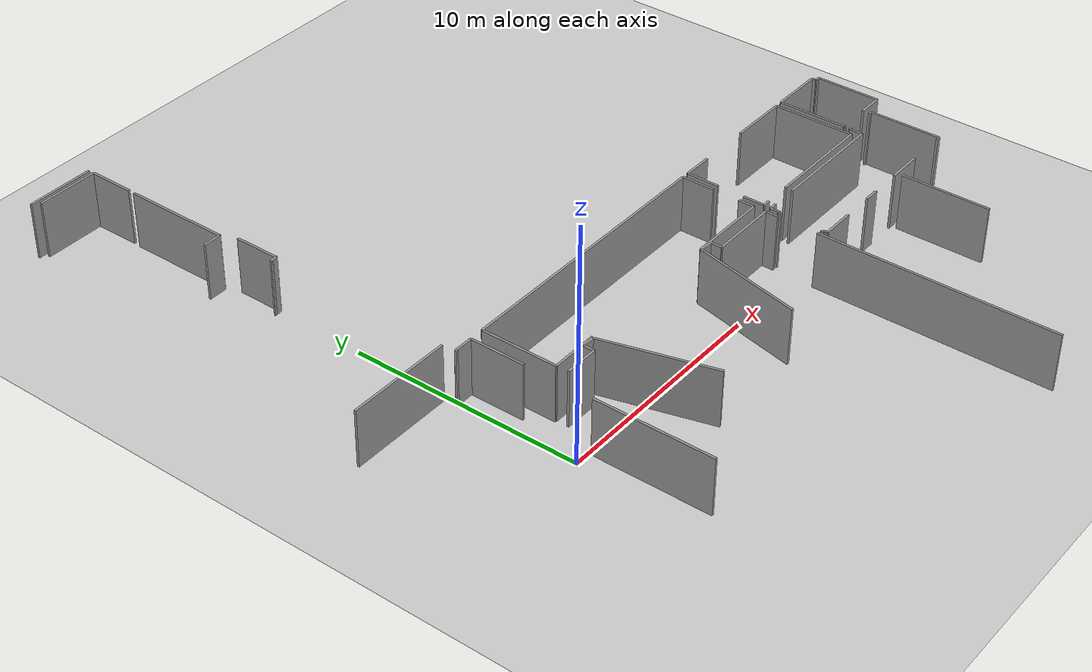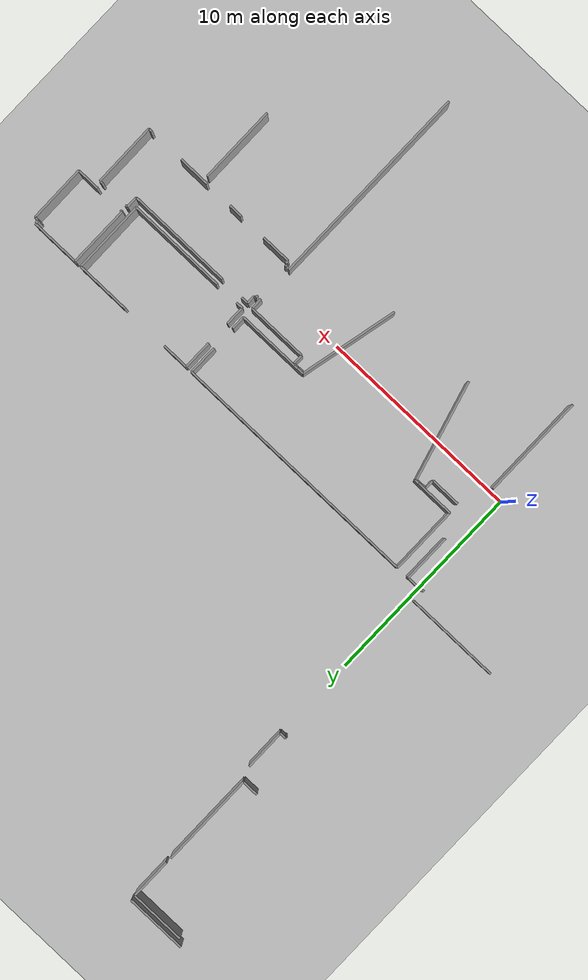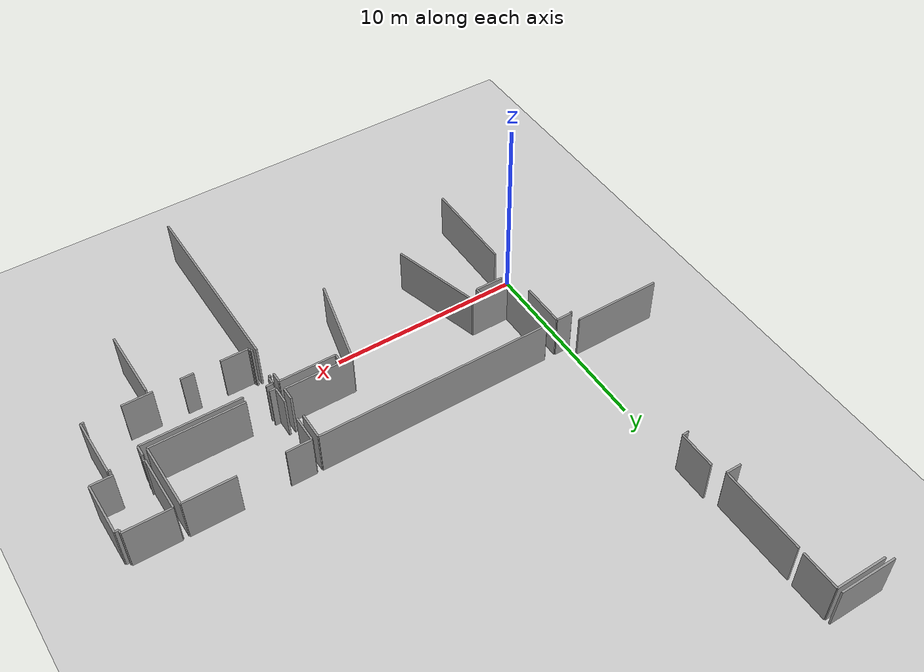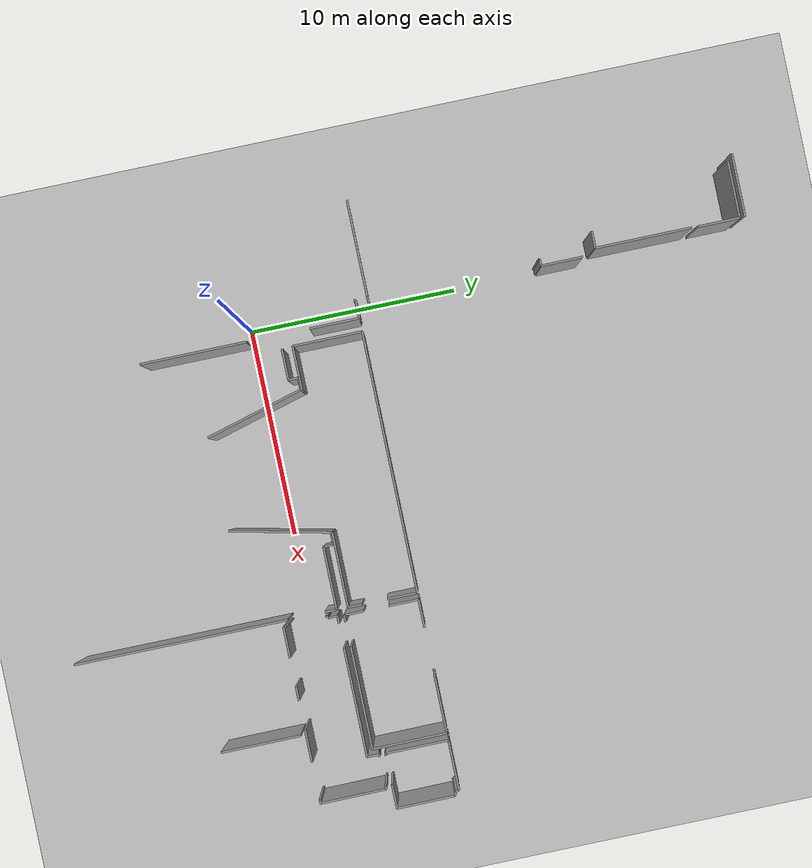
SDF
<sdf version="1.6">
 <world name="default">
  <model name="ground_plane">
   <static>1</static>
   <link name="link">
    <collision name="collision">
     <geometry><plane><normal>0 0 1</normal><size>100 100</size></plane></geometry>
     <surface><friction><ode><mu>100</mu><mu2>50</mu2></ode></friction></surface>
    </collision>
    <visual name="visual">
     <cast_shadows>0</cast_shadows>
     <geometry><plane><normal>0 0 1</normal><size>100 100</size></plane></geometry>
     <material>
      <script><uri>file://media/materials/scripts/gazebo.material</uri><name>Gazebo/Grey</name></script>
     </material>
    </visual>
   </link>
  </model>
  <model name="0510032322">
   <static>1</static>
   <link name="Wall_65">
    <collision name="Wall_65_Collision">
     <geometry><box><size>2.98356847737 0.1 2.5</size></box></geometry>
     <pose>1.49178423869 0 1.25 0 0 0</pose>
    </collision>
    <visual name="Wall_65_Visual">
     <pose>1.49178423869 0 1.25 0 0 0</pose>
     <geometry><box><size>2.98356847737 0.1 2.5</size></box></geometry>
     <material>
      <script><uri>file://media/materials/scripts/gazebo.material</uri><name>Gazebo/Grey</name></script>
      <ambient>1 1 1 1</ambient>
     </material>
    </visual>
    <pose>22.3246574386 -3.62267791296 0 0 0 3.14159265359</pose>
   </link>
   <link name="Wall_75">
    <collision name="Wall_75_Collision">
     <geometry><box><size>1.98676085122 0.1 2.5</size></box></geometry>
     <pose>0.993380425608 0 1.25 0 0 0</pose>
    </collision>
    <visual name="Wall_75_Visual">
     <pose>0.993380425608 0 1.25 0 0 0</pose>
     <geometry><box><size>1.98676085122 0.1 2.5</size></box></geometry>
     <material>
      <script><uri>file://media/materials/scripts/gazebo.material</uri><name>Gazebo/Grey</name></script>
      <ambient>1 1 1 1</ambient>
     </material>
    </visual>
    <pose>22.3357006404 -5.85848200402 0 0 0 1.57079632679</pose>
   </link>
   <link name="Wall_76">
    <collision name="Wall_76_Collision">
     <geometry><box><size>2.70431509936 0.1 2.5</size></box></geometry>
     <pose>1.35215754968 0 1.25 0 0 0</pose>
    </collision>
    <visual name="Wall_76_Visual">
     <pose>1.35215754968 0 1.25 0 0 0</pose>
     <geometry><box><size>2.70431509936 0.1 2.5</size></box></geometry>
     <material>
      <script><uri>file://media/materials/scripts/gazebo.material</uri><name>Gazebo/Grey</name></script>
      <ambient>1 1 1 1</ambient>
     </material>
    </visual>
    <pose>22.3357006404 -3.87172115281 0 0 0 3.14159265359</pose>
   </link>
   <link name="Wall_80">
    <collision name="Wall_80_Collision">
     <geometry><box><size>0.801203328193 0.1 2.5</size></box></geometry>
     <pose>0.400601664096 0 1.25 0 0 0</pose>
    </collision>
    <visual name="Wall_80_Visual">
     <pose>0.400601664096 0 1.25 0 0 0</pose>
     <geometry><box><size>0.801203328193 0.1 2.5</size></box></geometry>
     <material>
      <script><uri>file://media/materials/scripts/gazebo.material</uri><name>Gazebo/Grey</name></script>
      <ambient>1 1 1 1</ambient>
     </material>
    </visual>
    <pose>22.3240227718 -10.7221873155 0 0 0 3.14159265359</pose>
   </link>
   <link name="Wall_85">
    <collision name="Wall_85_Collision">
     <geometry><box><size>4.58128051464 0.1 2.5</size></box></geometry>
     <pose>2.29064025732 0 1.25 0 0 0</pose>
    </collision>
    <visual name="Wall_85_Visual">
     <pose>2.29064025732 0 1.25 0 0 0</pose>
     <geometry><box><size>4.58128051464 0.1 2.5</size></box></geometry>
     <material>
      <script><uri>file://media/materials/scripts/gazebo.material</uri><name>Gazebo/Grey</name></script>
      <ambient>1 1 1 1</ambient>
     </material>
    </visual>
    <pose>22.3198339712 -6.14090871588 0 0 0 -1.569881997</pose>
   </link>
   <link name="Wall_86">
    <collision name="Wall_86_Collision">
     <geometry><box><size>0.302355248377 0.1 2.5</size></box></geometry>
     <pose>0.151177624188 0 1.25 0 0 0</pose>
    </collision>
    <visual name="Wall_86_Visual">
     <pose>0.151177624188 0 1.25 0 0 0</pose>
     <geometry><box><size>0.302355248377 0.1 2.5</size></box></geometry>
     <material>
      <script><uri>file://media/materials/scripts/gazebo.material</uri><name>Gazebo/Grey</name></script>
      <ambient>1 1 1 1</ambient>
     </material>
    </visual>
    <pose>22.6143193516 -13.3566890704 0 0 0 3.14159265359</pose>
   </link>
   <link name="Wall_87">
    <collision name="Wall_87_Collision">
     <geometry><box><size>0.0699402778571 0.1 2.5</size></box></geometry>
     <pose>0.0349701389286 0 1.25 0 0 0</pose>
    </collision>
    <visual name="Wall_87_Visual">
     <pose>0.0349701389286 0 1.25 0 0 0</pose>
     <geometry><box><size>0.0699402778571 0.1 2.5</size></box></geometry>
     <material>
      <script><uri>file://media/materials/scripts/gazebo.material</uri><name>Gazebo/Grey</name></script>
      <ambient>1 1 1 1</ambient>
     </material>
    </visual>
    <pose>22.3119641032 -13.3566890704 0 0 0 -1.57079632679</pose>
   </link>
   <link name="Wall_92">
    <collision name="Wall_92_Collision">
     <geometry><box><size>1.96519549995 0.1 2.5</size></box></geometry>
     <pose>0.982597749976 0 1.25 0 0 0</pose>
    </collision>
    <visual name="Wall_92_Visual">
     <pose>0.982597749976 0 1.25 0 0 0</pose>
     <geometry><box><size>1.96519549995 0.1 2.5</size></box></geometry>
     <material>
      <script><uri>file://media/materials/scripts/gazebo.material</uri><name>Gazebo/Grey</name></script>
      <ambient>1 1 1 1</ambient>
     </material>
    </visual>
    <pose>22.6070841505 -11.3915068893 0 0 0 -1.56711464856</pose>
   </link>
   <link name="Wall_97">
    <collision name="Wall_97_Collision">
     <geometry><box><size>0.0821258798068 0.1 2.5</size></box></geometry>
     <pose>0.0410629399034 0 1.25 0 0 0</pose>
    </collision>
    <visual name="Wall_97_Visual">
     <pose>0.0410629399034 0 1.25 0 0 0</pose>
     <geometry><box><size>0.0821258798068 0.1 2.5</size></box></geometry>
     <material>
      <script><uri>file://media/materials/scripts/gazebo.material</uri><name>Gazebo/Grey</name></script>
      <ambient>1 1 1 1</ambient>
     </material>
    </visual>
    <pose>22.3892665156 -22.1893464836 0 0 0 1.57079632679</pose>
   </link>
   <link name="Wall_98">
    <collision name="Wall_98_Collision">
     <geometry><box><size>0.856673203734 0.1 2.5</size></box></geometry>
     <pose>0.428336601867 0 1.25 0 0 0</pose>
    </collision>
    <visual name="Wall_98_Visual">
     <pose>0.428336601867 0 1.25 0 0 0</pose>
     <geometry><box><size>0.856673203734 0.1 2.5</size></box></geometry>
     <material>
      <script><uri>file://media/materials/scripts/gazebo.material</uri><name>Gazebo/Grey</name></script>
      <ambient>1 1 1 1</ambient>
     </material>
    </visual>
    <pose>22.3892665156 -22.1072206038 0 0 0 0.0</pose>
   </link>
   <link name="Wall_99">
    <collision name="Wall_99_Collision">
     <geometry><box><size>2.35321744318 0.1 2.5</size></box></geometry>
     <pose>1.17660872159 0 1.25 0 0 0</pose>
    </collision>
    <visual name="Wall_99_Visual">
     <pose>1.17660872159 0 1.25 0 0 0</pose>
     <geometry><box><size>2.35321744318 0.1 2.5</size></box></geometry>
     <material>
      <script><uri>file://media/materials/scripts/gazebo.material</uri><name>Gazebo/Grey</name></script>
      <ambient>1 1 1 1</ambient>
     </material>
    </visual>
    <pose>23.2459397194 -22.1072206038 0 0 0 -1.57079632679</pose>
   </link>
   <link name="Wall_100">
    <collision name="Wall_100_Collision">
     <geometry><box><size>5.06070587638 0.1 2.5</size></box></geometry>
     <pose>2.53035293819 0 1.25 0 0 0</pose>
    </collision>
    <visual name="Wall_100_Visual">
     <pose>2.53035293819 0 1.25 0 0 0</pose>
     <geometry><box><size>5.06070587638 0.1 2.5</size></box></geometry>
     <material>
      <script><uri>file://media/materials/scripts/gazebo.material</uri><name>Gazebo/Grey</name></script>
      <ambient>1 1 1 1</ambient>
     </material>
    </visual>
    <pose>23.2459397194 -27.4531457258 0 0 0 -1.57079632679</pose>
   </link>
   <link name="Wall_105">
    <collision name="Wall_105_Collision">
     <geometry><box><size>4.56960073114 0.1 2.5</size></box></geometry>
     <pose>2.28480036557 0 1.25 0 0 0</pose>
    </collision>
    <visual name="Wall_105_Visual">
     <pose>2.28480036557 0 1.25 0 0 0</pose>
     <geometry><box><size>4.56960073114 0.1 2.5</size></box></geometry>
     <material>
      <script><uri>file://media/materials/scripts/gazebo.material</uri><name>Gazebo/Grey</name></script>
      <ambient>1 1 1 1</ambient>
     </material>
    </visual>
    <pose>22.3357006404 -21.5430018469 0 0 0 3.14159265359</pose>
   </link>
   <link name="Wall_109">
    <collision name="Wall_109_Collision">
     <geometry><box><size>3.56111523645 0.1 2.5</size></box></geometry>
     <pose>1.78055761822 0 1.25 0 0 0</pose>
    </collision>
    <visual name="Wall_109_Visual">
     <pose>1.78055761822 0 1.25 0 0 0</pose>
     <geometry><box><size>3.56111523645 0.1 2.5</size></box></geometry>
     <material>
      <script><uri>file://media/materials/scripts/gazebo.material</uri><name>Gazebo/Grey</name></script>
      <ambient>1 1 1 1</ambient>
     </material>
    </visual>
    <pose>36.2705711366 -25.3908595292 0 0 0 3.14159265359</pose>
   </link>
   <link name="Wall_110">
    <collision name="Wall_110_Collision">
     <geometry><box><size>4.80413171516 0.1 2.5</size></box></geometry>
     <pose>2.40206585758 0 1.25 0 0 0</pose>
    </collision>
    <visual name="Wall_110_Visual">
     <pose>2.40206585758 0 1.25 0 0 0</pose>
     <geometry><box><size>4.80413171516 0.1 2.5</size></box></geometry>
     <material>
      <script><uri>file://media/materials/scripts/gazebo.material</uri><name>Gazebo/Grey</name></script>
      <ambient>1 1 1 1</ambient>
     </material>
    </visual>
    <pose>32.7094559002 -25.3908595292 0 0 0 -1.79072910683</pose>
   </link>
   <link name="Wall_112">
    <collision name="Wall_112_Collision">
     <geometry><box><size>2.085388067 0.1 2.5</size></box></geometry>
     <pose>1.0426940335 0 1.25 0 0 0</pose>
    </collision>
    <visual name="Wall_112_Visual">
     <pose>1.0426940335 0 1.25 0 0 0</pose>
     <geometry><box><size>2.085388067 0.1 2.5</size></box></geometry>
     <material>
      <script><uri>file://media/materials/scripts/gazebo.material</uri><name>Gazebo/Grey</name></script>
      <ambient>1 1 1 1</ambient>
     </material>
    </visual>
    <pose>25.9667561547 -25.4007603308 0 0 0 3.14159265359</pose>
   </link>
   <link name="Wall_113">
    <collision name="Wall_113_Collision">
     <geometry><box><size>3.29772852764 0.1 2.5</size></box></geometry>
     <pose>1.64886426382 0 1.25 0 0 0</pose>
    </collision>
    <visual name="Wall_113_Visual">
     <pose>1.64886426382 0 1.25 0 0 0</pose>
     <geometry><box><size>3.29772852764 0.1 2.5</size></box></geometry>
     <material>
      <script><uri>file://media/materials/scripts/gazebo.material</uri><name>Gazebo/Grey</name></script>
      <ambient>1 1 1 1</ambient>
     </material>
    </visual>
    <pose>23.8813680877 -25.4007603308 0 0 0 1.57079632679</pose>
   </link>
   <link name="Wall_114">
    <collision name="Wall_114_Collision">
     <geometry><box><size>12.391360916 0.1 2.5</size></box></geometry>
     <pose>6.19568045798 0 1.25 0 0 0</pose>
    </collision>
    <visual name="Wall_114_Visual">
     <pose>6.19568045798 0 1.25 0 0 0</pose>
     <geometry><box><size>12.391360916 0.1 2.5</size></box></geometry>
     <material>
      <script><uri>file://media/materials/scripts/gazebo.material</uri><name>Gazebo/Grey</name></script>
      <ambient>1 1 1 1</ambient>
     </material>
    </visual>
    <pose>23.8813680877 -22.1030318032 0 0 0 0.0</pose>
   </link>
   <link name="Wall_115">
    <collision name="Wall_115_Collision">
     <geometry><box><size>1.42863489525 0.1 2.5</size></box></geometry>
     <pose>0.714317447624 0 1.25 0 0 0</pose>
    </collision>
    <visual name="Wall_115_Visual">
     <pose>0.714317447624 0 1.25 0 0 0</pose>
     <geometry><box><size>1.42863489525 0.1 2.5</size></box></geometry>
     <material>
      <script><uri>file://media/materials/scripts/gazebo.material</uri><name>Gazebo/Grey</name></script>
      <ambient>1 1 1 1</ambient>
     </material>
    </visual>
    <pose>36.2727290036 -22.1030318032 0 0 0 -1.57079632679</pose>
   </link>
   <link name="Wall_116">
    <collision name="Wall_116_Collision">
     <geometry><box><size>0.687093631744 0.1 2.5</size></box></geometry>
     <pose>0.343546815872 0 1.25 0 0 0</pose>
    </collision>
    <visual name="Wall_116_Visual">
     <pose>0.343546815872 0 1.25 0 0 0</pose>
     <geometry><box><size>0.687093631744 0.1 2.5</size></box></geometry>
     <material>
      <script><uri>file://media/materials/scripts/gazebo.material</uri><name>Gazebo/Grey</name></script>
      <ambient>1 1 1 1</ambient>
     </material>
    </visual>
    <pose>36.2727290036 -24.7037692859 0 0 0 -1.57393690394</pose>
   </link>
   <link name="Wall_117">
    <collision name="Wall_117_Collision">
     <geometry><box><size>4.85735864384 0.1 2.5</size></box></geometry>
     <pose>2.42867932192 0 1.25 0 0 0</pose>
    </collision>
    <visual name="Wall_117_Visual">
     <pose>2.42867932192 0 1.25 0 0 0</pose>
     <geometry><box><size>4.85735864384 0.1 2.5</size></box></geometry>
     <material>
      <script><uri>file://media/materials/scripts/gazebo.material</uri><name>Gazebo/Grey</name></script>
      <ambient>1 1 1 1</ambient>
     </material>
    </visual>
    <pose>42.9452346046 -25.6391411689 0 0 0 3.14159265359</pose>
   </link>
   <link name="Wall_118">
    <collision name="Wall_118_Collision">
     <geometry><box><size>0.328122719166 0.1 2.5</size></box></geometry>
     <pose>0.164061359583 0 1.25 0 0 0</pose>
    </collision>
    <visual name="Wall_118_Visual">
     <pose>0.164061359583 0 1.25 0 0 0</pose>
     <geometry><box><size>0.328122719166 0.1 2.5</size></box></geometry>
     <material>
      <script><uri>file://media/materials/scripts/gazebo.material</uri><name>Gazebo/Grey</name></script>
      <ambient>1 1 1 1</ambient>
     </material>
    </visual>
    <pose>36.91678884 -25.6391411689 0 0 0 3.14159265359</pose>
   </link>
   <link name="Wall_119">
    <collision name="Wall_119_Collision">
     <geometry><box><size>0.938164416773 0.1 2.5</size></box></geometry>
     <pose>0.469082208386 0 1.25 0 0 0</pose>
    </collision>
    <visual name="Wall_119_Visual">
     <pose>0.469082208386 0 1.25 0 0 0</pose>
     <geometry><box><size>0.938164416773 0.1 2.5</size></box></geometry>
     <material>
      <script><uri>file://media/materials/scripts/gazebo.material</uri><name>Gazebo/Grey</name></script>
      <ambient>1 1 1 1</ambient>
     </material>
    </visual>
    <pose>36.5886661209 -25.6391411689 0 0 0 1.57079632679</pose>
   </link>
   <link name="Wall_120">
    <collision name="Wall_120_Collision">
     <geometry><box><size>1.41797249354 0.1 2.5</size></box></geometry>
     <pose>0.708986246771 0 1.25 0 0 0</pose>
    </collision>
    <visual name="Wall_120_Visual">
     <pose>0.708986246771 0 1.25 0 0 0</pose>
     <geometry><box><size>1.41797249354 0.1 2.5</size></box></geometry>
     <material>
      <script><uri>file://media/materials/scripts/gazebo.material</uri><name>Gazebo/Grey</name></script>
      <ambient>1 1 1 1</ambient>
     </material>
    </visual>
    <pose>36.5886661209 -23.527224031 0 0 0 1.57079632679</pose>
   </link>
   <link name="Wall_121">
    <collision name="Wall_121_Collision">
     <geometry><box><size>1.31756821081 0.1 2.5</size></box></geometry>
     <pose>0.658784105405 0 1.25 0 0 0</pose>
    </collision>
    <visual name="Wall_121_Visual">
     <pose>0.658784105405 0 1.25 0 0 0</pose>
     <geometry><box><size>1.31756821081 0.1 2.5</size></box></geometry>
     <material>
      <script><uri>file://media/materials/scripts/gazebo.material</uri><name>Gazebo/Grey</name></script>
      <ambient>1 1 1 1</ambient>
     </material>
    </visual>
    <pose>36.5886661209 -22.1092515375 0 0 0 0.0</pose>
   </link>
   <link name="Wall_122">
    <collision name="Wall_122_Collision">
     <geometry><box><size>2.65252629107 0.1 2.5</size></box></geometry>
     <pose>1.32626314554 0 1.25 0 0 0</pose>
    </collision>
    <visual name="Wall_122_Visual">
     <pose>1.32626314554 0 1.25 0 0 0</pose>
     <geometry><box><size>2.65252629107 0.1 2.5</size></box></geometry>
     <material>
      <script><uri>file://media/materials/scripts/gazebo.material</uri><name>Gazebo/Grey</name></script>
      <ambient>1 1 1 1</ambient>
     </material>
    </visual>
    <pose>40.2675755095 -22.1092515375 0 0 0 0.0</pose>
   </link>
   <link name="Wall_123">
    <collision name="Wall_123_Collision">
     <geometry><box><size>3.52997910306 0.1 2.5</size></box></geometry>
     <pose>1.76498955153 0 1.25 0 0 0</pose>
    </collision>
    <visual name="Wall_123_Visual">
     <pose>1.76498955153 0 1.25 0 0 0</pose>
     <geometry><box><size>3.52997910306 0.1 2.5</size></box></geometry>
     <material>
      <script><uri>file://media/materials/scripts/gazebo.material</uri><name>Gazebo/Grey</name></script>
      <ambient>1 1 1 1</ambient>
     </material>
    </visual>
    <pose>42.9201018005 -22.1092515375 0 0 0 -1.56367644998</pose>
   </link>
   <link name="Wall_124">
    <collision name="Wall_124_Collision">
     <geometry><box><size>0.172756294308 0.1 2.5</size></box></geometry>
     <pose>0.0863781471538 0 1.25 0 0 0</pose>
    </collision>
    <visual name="Wall_124_Visual">
     <pose>0.0863781471538 0 1.25 0 0 0</pose>
     <geometry><box><size>0.172756294308 0.1 2.5</size></box></geometry>
     <material>
      <script><uri>file://media/materials/scripts/gazebo.material</uri><name>Gazebo/Grey</name></script>
      <ambient>1 1 1 1</ambient>
     </material>
    </visual>
    <pose>44.9077511852 -28.5078349613 0 0 0 3.14159265359</pose>
   </link>
   <link name="Wall_125">
    <collision name="Wall_125_Collision">
     <geometry><box><size>1.55556824889 0.1 2.5</size></box></geometry>
     <pose>0.777784124445 0 1.25 0 0 0</pose>
    </collision>
    <visual name="Wall_125_Visual">
     <pose>0.777784124445 0 1.25 0 0 0</pose>
     <geometry><box><size>1.55556824889 0.1 2.5</size></box></geometry>
     <material>
      <script><uri>file://media/materials/scripts/gazebo.material</uri><name>Gazebo/Grey</name></script>
      <ambient>1 1 1 1</ambient>
     </material>
    </visual>
    <pose>42.9725252756 -28.5078349613 0 0 0 3.14159265359</pose>
   </link>
   <link name="Wall_126">
    <collision name="Wall_126_Collision">
     <geometry><box><size>0.680489708878 0.1 2.5</size></box></geometry>
     <pose>0.340244854439 0 1.25 0 0 0</pose>
    </collision>
    <visual name="Wall_126_Visual">
     <pose>0.340244854439 0 1.25 0 0 0</pose>
     <geometry><box><size>0.680489708878 0.1 2.5</size></box></geometry>
     <material>
      <script><uri>file://media/materials/scripts/gazebo.material</uri><name>Gazebo/Grey</name></script>
      <ambient>1 1 1 1</ambient>
     </material>
    </visual>
    <pose>40.048107741 -28.5078349613 0 0 0 3.14159265359</pose>
   </link>
   <link name="Wall_127">
    <collision name="Wall_127_Collision">
     <geometry><box><size>1.46366850085 0.1 2.5</size></box></geometry>
     <pose>0.731834250427 0 1.25 0 0 0</pose>
    </collision>
    <visual name="Wall_127_Visual">
     <pose>0.731834250427 0 1.25 0 0 0</pose>
     <geometry><box><size>1.46366850085 0.1 2.5</size></box></geometry>
     <material>
      <script><uri>file://media/materials/scripts/gazebo.material</uri><name>Gazebo/Grey</name></script>
      <ambient>1 1 1 1</ambient>
     </material>
    </visual>
    <pose>38.0145084823 -28.5078349613 0 0 0 3.14159265359</pose>
   </link>
   <link name="Wall_128">
    <collision name="Wall_128_Collision">
     <geometry><box><size>0.144069356384 0.1 2.5</size></box></geometry>
     <pose>0.0720346781922 0 1.25 0 0 0</pose>
    </collision>
    <visual name="Wall_128_Visual">
     <pose>0.0720346781922 0 1.25 0 0 0</pose>
     <geometry><box><size>0.144069356384 0.1 2.5</size></box></geometry>
     <material>
      <script><uri>file://media/materials/scripts/gazebo.material</uri><name>Gazebo/Grey</name></script>
      <ambient>1 1 1 1</ambient>
     </material>
    </visual>
    <pose>36.5508399815 -28.5078349613 0 0 0 1.57079632679</pose>
   </link>
   <link name="Wall_129">
    <collision name="Wall_129_Collision">
     <geometry><box><size>0.0680362775525 0.1 2.5</size></box></geometry>
     <pose>0.0340181387762 0 1.25 0 0 0</pose>
    </collision>
    <visual name="Wall_129_Visual">
     <pose>0.0340181387762 0 1.25 0 0 0</pose>
     <geometry><box><size>0.0680362775525 0.1 2.5</size></box></geometry>
     <material>
      <script><uri>file://media/materials/scripts/gazebo.material</uri><name>Gazebo/Grey</name></script>
      <ambient>1 1 1 1</ambient>
     </material>
    </visual>
    <pose>36.5508399815 -28.3637656049 0 0 0 3.14159265359</pose>
   </link>
   <link name="Wall_130">
    <collision name="Wall_130_Collision">
     <geometry><box><size>0.11919041907 0.1 2.5</size></box></geometry>
     <pose>0.0595952095352 0 1.25 0 0 0</pose>
    </collision>
    <visual name="Wall_130_Visual">
     <pose>0.0595952095352 0 1.25 0 0 0</pose>
     <geometry><box><size>0.11919041907 0.1 2.5</size></box></geometry>
     <material>
      <script><uri>file://media/materials/scripts/gazebo.material</uri><name>Gazebo/Grey</name></script>
      <ambient>1 1 1 1</ambient>
     </material>
    </visual>
    <pose>36.4828037039 -28.3637656049 0 0 0 1.57079632679</pose>
   </link>
   <link name="Wall_131">
    <collision name="Wall_131_Collision">
     <geometry><box><size>0.128710420594 0.1 2.5</size></box></geometry>
     <pose>0.0643552102968 0 1.25 0 0 0</pose>
    </collision>
    <visual name="Wall_131_Visual">
     <pose>0.0643552102968 0 1.25 0 0 0</pose>
     <geometry><box><size>0.128710420594 0.1 2.5</size></box></geometry>
     <material>
      <script><uri>file://media/materials/scripts/gazebo.material</uri><name>Gazebo/Grey</name></script>
      <ambient>1 1 1 1</ambient>
     </material>
    </visual>
    <pose>36.4828037039 -26.4994954399 0 0 0 1.57079632679</pose>
   </link>
   <link name="Wall_132">
    <collision name="Wall_132_Collision">
     <geometry><box><size>0.0789525459657 0.1 2.5</size></box></geometry>
     <pose>0.0394762729829 0 1.25 0 0 0</pose>
    </collision>
    <visual name="Wall_132_Visual">
     <pose>0.0394762729829 0 1.25 0 0 0</pose>
     <geometry><box><size>0.0789525459657 0.1 2.5</size></box></geometry>
     <material>
      <script><uri>file://media/materials/scripts/gazebo.material</uri><name>Gazebo/Grey</name></script>
      <ambient>1 1 1 1</ambient>
     </material>
    </visual>
    <pose>36.4828037039 -26.3707850193 0 0 0 0.0</pose>
   </link>
   <link name="Wall_133">
    <collision name="Wall_133_Collision">
     <geometry><box><size>0.414945133058 0.1 2.5</size></box></geometry>
     <pose>0.207472566529 0 1.25 0 0 0</pose>
    </collision>
    <visual name="Wall_133_Visual">
     <pose>0.207472566529 0 1.25 0 0 0</pose>
     <geometry><box><size>0.414945133058 0.1 2.5</size></box></geometry>
     <material>
      <script><uri>file://media/materials/scripts/gazebo.material</uri><name>Gazebo/Grey</name></script>
      <ambient>1 1 1 1</ambient>
     </material>
    </visual>
    <pose>36.5617562499 -26.3707850193 0 0 0 1.57079632679</pose>
   </link>
   <link name="Wall_134">
    <collision name="Wall_134_Collision">
     <geometry><box><size>0.356936590443 0.1 2.5</size></box></geometry>
     <pose>0.178468295222 0 1.25 0 0 0</pose>
    </collision>
    <visual name="Wall_134_Visual">
     <pose>0.178468295222 0 1.25 0 0 0</pose>
     <geometry><box><size>0.356936590443 0.1 2.5</size></box></geometry>
     <material>
      <script><uri>file://media/materials/scripts/gazebo.material</uri><name>Gazebo/Grey</name></script>
      <ambient>1 1 1 1</ambient>
     </material>
    </visual>
    <pose>36.5617562499 -25.9558398863 0 0 0 0.0</pose>
   </link>
   <link name="Wall_135">
    <collision name="Wall_135_Collision">
     <geometry><box><size>5.15920615881 0.1 2.5</size></box></geometry>
     <pose>2.5796030794 0 1.25 0 0 0</pose>
    </collision>
    <visual name="Wall_135_Visual">
     <pose>2.5796030794 0 1.25 0 0 0</pose>
     <geometry><box><size>5.15920615881 0.1 2.5</size></box></geometry>
     <material>
      <script><uri>file://media/materials/scripts/gazebo.material</uri><name>Gazebo/Grey</name></script>
      <ambient>1 1 1 1</ambient>
     </material>
    </visual>
    <pose>38.0805138262 -25.9558398863 0 0 0 0.0</pose>
   </link>
   <link name="Wall_136">
    <collision name="Wall_136_Collision">
     <geometry><box><size>0.569676891148 0.1 2.5</size></box></geometry>
     <pose>0.284838445574 0 1.25 0 0 0</pose>
    </collision>
    <visual name="Wall_136_Visual">
     <pose>0.284838445574 0 1.25 0 0 0</pose>
     <geometry><box><size>0.569676891148 0.1 2.5</size></box></geometry>
     <material>
      <script><uri>file://media/materials/scripts/gazebo.material</uri><name>Gazebo/Grey</name></script>
      <ambient>1 1 1 1</ambient>
     </material>
    </visual>
    <pose>43.239719985 -25.9558398863 0 0 0 1.57079632679</pose>
   </link>
   <link name="Wall_137">
    <collision name="Wall_137_Collision">
     <geometry><box><size>0.109797350901 0.1 2.5</size></box></geometry>
     <pose>0.0548986754505 0 1.25 0 0 0</pose>
    </collision>
    <visual name="Wall_137_Visual">
     <pose>0.0548986754505 0 1.25 0 0 0</pose>
     <geometry><box><size>0.109797350901 0.1 2.5</size></box></geometry>
     <material>
      <script><uri>file://media/materials/scripts/gazebo.material</uri><name>Gazebo/Grey</name></script>
      <ambient>1 1 1 1</ambient>
     </material>
    </visual>
    <pose>43.239719985 -25.3861629951 0 0 0 0.0</pose>
   </link>
   <link name="Wall_138">
    <collision name="Wall_138_Collision">
     <geometry><box><size>0.148131223701 0.1 2.5</size></box></geometry>
     <pose>0.0740656118505 0 1.25 0 0 0</pose>
    </collision>
    <visual name="Wall_138_Visual">
     <pose>0.0740656118505 0 1.25 0 0 0</pose>
     <geometry><box><size>0.148131223701 0.1 2.5</size></box></geometry>
     <material>
      <script><uri>file://media/materials/scripts/gazebo.material</uri><name>Gazebo/Grey</name></script>
      <ambient>1 1 1 1</ambient>
     </material>
    </visual>
    <pose>44.7346140909 -25.3861629951 0 0 0 0.0</pose>
   </link>
   <link name="Wall_139">
    <collision name="Wall_139_Collision">
     <geometry><box><size>3.12177211816 0.1 2.5</size></box></geometry>
     <pose>1.56088605908 0 1.25 0 0 0</pose>
    </collision>
    <visual name="Wall_139_Visual">
     <pose>1.56088605908 0 1.25 0 0 0</pose>
     <geometry><box><size>3.12177211816 0.1 2.5</size></box></geometry>
     <material>
      <script><uri>file://media/materials/scripts/gazebo.material</uri><name>Gazebo/Grey</name></script>
      <ambient>1 1 1 1</ambient>
     </material>
    </visual>
    <pose>44.8827453146 -25.3861629951 0 0 0 -1.56278608866</pose>
   </link>
   <link name="Wall_140">
    <collision name="Wall_140_Collision">
     <geometry><box><size>1.11739431212 0.1 2.5</size></box></geometry>
     <pose>0.558697156058 0 1.25 0 0 0</pose>
    </collision>
    <visual name="Wall_140_Visual">
     <pose>0.558697156058 0 1.25 0 0 0</pose>
     <geometry><box><size>1.11739431212 0.1 2.5</size></box></geometry>
     <material>
      <script><uri>file://media/materials/scripts/gazebo.material</uri><name>Gazebo/Grey</name></script>
      <ambient>1 1 1 1</ambient>
     </material>
    </visual>
    <pose>45.8650825384 -25.0824114799 0 0 0 3.14159265359</pose>
   </link>
   <link name="Wall_141">
    <collision name="Wall_141_Collision">
     <geometry><box><size>0.115255485108 0.1 2.5</size></box></geometry>
     <pose>0.0576277425538 0 1.25 0 0 0</pose>
    </collision>
    <visual name="Wall_141_Visual">
     <pose>0.0576277425538 0 1.25 0 0 0</pose>
     <geometry><box><size>0.115255485108 0.1 2.5</size></box></geometry>
     <material>
      <script><uri>file://media/materials/scripts/gazebo.material</uri><name>Gazebo/Grey</name></script>
      <ambient>1 1 1 1</ambient>
     </material>
    </visual>
    <pose>43.3736346731 -25.0824114799 0 0 0 3.14159265359</pose>
   </link>
   <link name="Wall_142">
    <collision name="Wall_142_Collision">
     <geometry><box><size>2.98141061036 0.1 2.5</size></box></geometry>
     <pose>1.49070530518 0 1.25 0 0 0</pose>
    </collision>
    <visual name="Wall_142_Visual">
     <pose>1.49070530518 0 1.25 0 0 0</pose>
     <geometry><box><size>2.98141061036 0.1 2.5</size></box></geometry>
     <material>
      <script><uri>file://media/materials/scripts/gazebo.material</uri><name>Gazebo/Grey</name></script>
      <ambient>1 1 1 1</ambient>
     </material>
    </visual>
    <pose>43.258379188 -25.0824114799 0 0 0 1.57079632679</pose>
   </link>
   <link name="Wall_143">
    <collision name="Wall_143_Collision">
     <geometry><box><size>2.38393531476 0.1 2.5</size></box></geometry>
     <pose>1.19196765738 0 1.25 0 0 0</pose>
    </collision>
    <visual name="Wall_143_Visual">
     <pose>1.19196765738 0 1.25 0 0 0</pose>
     <geometry><box><size>2.38393531476 0.1 2.5</size></box></geometry>
     <material>
      <script><uri>file://media/materials/scripts/gazebo.material</uri><name>Gazebo/Grey</name></script>
      <ambient>1 1 1 1</ambient>
     </material>
    </visual>
    <pose>43.258379188 -22.1010008695 0 0 0 0.0</pose>
   </link>
   <link name="Wall_144">
    <collision name="Wall_144_Collision">
     <geometry><box><size>0.191796297354 0.1 2.5</size></box></geometry>
     <pose>0.095898148677 0 1.25 0 0 0</pose>
    </collision>
    <visual name="Wall_144_Visual">
     <pose>0.095898148677 0 1.25 0 0 0</pose>
     <geometry><box><size>0.191796297354 0.1 2.5</size></box></geometry>
     <material>
      <script><uri>file://media/materials/scripts/gazebo.material</uri><name>Gazebo/Grey</name></script>
      <ambient>1 1 1 1</ambient>
     </material>
    </visual>
    <pose>45.6423145028 -22.1010008695 0 0 0 -1.57079632679</pose>
   </link>
   <link name="Wall_145">
    <collision name="Wall_145_Collision">
     <geometry><box><size>0.202077898999 0.1 2.5</size></box></geometry>
     <pose>0.1010389495 0 1.25 0 0 0</pose>
    </collision>
    <visual name="Wall_145_Visual">
     <pose>0.1010389495 0 1.25 0 0 0</pose>
     <geometry><box><size>0.202077898999 0.1 2.5</size></box></geometry>
     <material>
      <script><uri>file://media/materials/scripts/gazebo.material</uri><name>Gazebo/Grey</name></script>
      <ambient>1 1 1 1</ambient>
     </material>
    </visual>
    <pose>45.6423145028 -22.2927971668 0 0 0 0.0</pose>
   </link>
   <link name="Wall_146">
    <collision name="Wall_146_Collision">
     <geometry><box><size>2.78969103972 0.1 2.5</size></box></geometry>
     <pose>1.39484551986 0 1.25 0 0 0</pose>
    </collision>
    <visual name="Wall_146_Visual">
     <pose>1.39484551986 0 1.25 0 0 0</pose>
     <geometry><box><size>2.78969103972 0.1 2.5</size></box></geometry>
     <material>
      <script><uri>file://media/materials/scripts/gazebo.material</uri><name>Gazebo/Grey</name></script>
      <ambient>1 1 1 1</ambient>
     </material>
    </visual>
    <pose>45.8443924018 -22.2927971668 0 0 0 -1.56337961791</pose>
   </link>
   <link name="Wall_158">
    <collision name="Wall_158_Collision">
     <geometry><box><size>3.78655990167 0.1 2.5</size></box></geometry>
     <pose>1.89327995084 0 1.25 0 0 0</pose>
    </collision>
    <visual name="Wall_158_Visual">
     <pose>1.89327995084 0 1.25 0 0 0</pose>
     <geometry><box><size>3.78655990167 0.1 2.5</size></box></geometry>
     <material>
      <script><uri>file://media/materials/scripts/gazebo.material</uri><name>Gazebo/Grey</name></script>
      <ambient>1 1 1 1</ambient>
     </material>
    </visual>
    <pose>41.6407405292 -28.7525624671 0 0 0 -1.56838273489</pose>
   </link>
   <link name="Wall_181">
    <collision name="Wall_181_Collision">
     <geometry><box><size>1.47547330274 0.1 2.5</size></box></geometry>
     <pose>0.737736651371 0 1.25 0 0 0</pose>
    </collision>
    <visual name="Wall_181_Visual">
     <pose>0.737736651371 0 1.25 0 0 0</pose>
     <geometry><box><size>1.47547330274 0.1 2.5</size></box></geometry>
     <material>
      <script><uri>file://media/materials/scripts/gazebo.material</uri><name>Gazebo/Grey</name></script>
      <ambient>1 1 1 1</ambient>
     </material>
    </visual>
    <pose>23.8988848905 -25.9190292137 0 0 0 0.0</pose>
   </link>
   <link name="Wall_182">
    <collision name="Wall_182_Collision">
     <geometry><box><size>0.466987808051 0.1 2.5</size></box></geometry>
     <pose>0.233493904026 0 1.25 0 0 0</pose>
    </collision>
    <visual name="Wall_182_Visual">
     <pose>0.233493904026 0 1.25 0 0 0</pose>
     <geometry><box><size>0.466987808051 0.1 2.5</size></box></geometry>
     <material>
      <script><uri>file://media/materials/scripts/gazebo.material</uri><name>Gazebo/Grey</name></script>
      <ambient>1 1 1 1</ambient>
     </material>
    </visual>
    <pose>25.3743581932 -25.9190292137 0 0 0 1.57079632679</pose>
   </link>
   <link name="Wall_183">
    <collision name="Wall_183_Collision">
     <geometry><box><size>0.559395289503 0.1 2.5</size></box></geometry>
     <pose>0.279697644752 0 1.25 0 0 0</pose>
    </collision>
    <visual name="Wall_183_Visual">
     <pose>0.279697644752 0 1.25 0 0 0</pose>
     <geometry><box><size>0.559395289503 0.1 2.5</size></box></geometry>
     <material>
      <script><uri>file://media/materials/scripts/gazebo.material</uri><name>Gazebo/Grey</name></script>
      <ambient>1 1 1 1</ambient>
     </material>
    </visual>
    <pose>25.3743581932 -25.4520414057 0 0 0 0.0</pose>
   </link>
   <link name="Wall_184">
    <collision name="Wall_184_Collision">
     <geometry><box><size>4.84649726288 0.1 2.5</size></box></geometry>
     <pose>2.42324863144 0 1.25 0 0 0</pose>
    </collision>
    <visual name="Wall_184_Visual">
     <pose>2.42324863144 0 1.25 0 0 0</pose>
     <geometry><box><size>4.84649726288 0.1 2.5</size></box></geometry>
     <material>
      <script><uri>file://media/materials/scripts/gazebo.material</uri><name>Gazebo/Grey</name></script>
      <ambient>1 1 1 1</ambient>
     </material>
    </visual>
    <pose>25.9337534827 -25.4520414057 0 0 0 -1.30009481915</pose>
   </link>
   <link name="Wall_186">
    <collision name="Wall_186_Collision">
     <geometry><box><size>0.560156889625 0.1 2.5</size></box></geometry>
     <pose>0.280078444813 0 1.25 0 0 0</pose>
    </collision>
    <visual name="Wall_186_Visual">
     <pose>0.280078444813 0 1.25 0 0 0</pose>
     <geometry><box><size>0.560156889625 0.1 2.5</size></box></geometry>
     <material>
      <script><uri>file://media/materials/scripts/gazebo.material</uri><name>Gazebo/Grey</name></script>
      <ambient>1 1 1 1</ambient>
     </material>
    </visual>
    <pose>32.7277343031 -25.4454408713 0 0 0 0.0</pose>
   </link>
   <link name="Wall_187">
    <collision name="Wall_187_Collision">
     <geometry><box><size>0.481331277013 0.1 2.5</size></box></geometry>
     <pose>0.240665638507 0 1.25 0 0 0</pose>
    </collision>
    <visual name="Wall_187_Visual">
     <pose>0.240665638507 0 1.25 0 0 0</pose>
     <geometry><box><size>0.481331277013 0.1 2.5</size></box></geometry>
     <material>
      <script><uri>file://media/materials/scripts/gazebo.material</uri><name>Gazebo/Grey</name></script>
      <ambient>1 1 1 1</ambient>
     </material>
    </visual>
    <pose>33.2878911927 -25.4454408713 0 0 0 -1.57079632679</pose>
   </link>
   <link name="Wall_188">
    <collision name="Wall_188_Collision">
     <geometry><box><size>2.97658714292 0.1 2.5</size></box></geometry>
     <pose>1.48829357146 0 1.25 0 0 0</pose>
    </collision>
    <visual name="Wall_188_Visual">
     <pose>1.48829357146 0 1.25 0 0 0</pose>
     <geometry><box><size>2.97658714292 0.1 2.5</size></box></geometry>
     <material>
      <script><uri>file://media/materials/scripts/gazebo.material</uri><name>Gazebo/Grey</name></script>
      <ambient>1 1 1 1</ambient>
     </material>
    </visual>
    <pose>33.2878911927 -25.9267721483 0 0 0 0.0</pose>
   </link>
   <link name="Wall_189">
    <collision name="Wall_189_Collision">
     <geometry><box><size>0.551525421577 0.1 2.5</size></box></geometry>
     <pose>0.275762710789 0 1.25 0 0 0</pose>
    </collision>
    <visual name="Wall_189_Visual">
     <pose>0.275762710789 0 1.25 0 0 0</pose>
     <geometry><box><size>0.551525421577 0.1 2.5</size></box></geometry>
     <material>
      <script><uri>file://media/materials/scripts/gazebo.material</uri><name>Gazebo/Grey</name></script>
      <ambient>1 1 1 1</ambient>
     </material>
    </visual>
    <pose>36.2644783356 -25.9267721483 0 0 0 -1.57079632679</pose>
   </link>
   <link name="Wall_190">
    <collision name="Wall_190_Collision">
     <geometry><box><size>10.1428634895 0.1 2.5</size></box></geometry>
     <pose>5.07143174476 0 1.25 0 0 0</pose>
    </collision>
    <visual name="Wall_190_Visual">
     <pose>5.07143174476 0 1.25 0 0 0</pose>
     <geometry><box><size>10.1428634895 0.1 2.5</size></box></geometry>
     <material>
      <script><uri>file://media/materials/scripts/gazebo.material</uri><name>Gazebo/Grey</name></script>
      <ambient>1 1 1 1</ambient>
     </material>
    </visual>
    <pose>36.2644783356 -28.2302317168 0 0 0 -1.57079632679</pose>
   </link>
   <pose>-22.5 27.37072663 0 0 0 0</pose>
  </model>
 </world>
</sdf>
